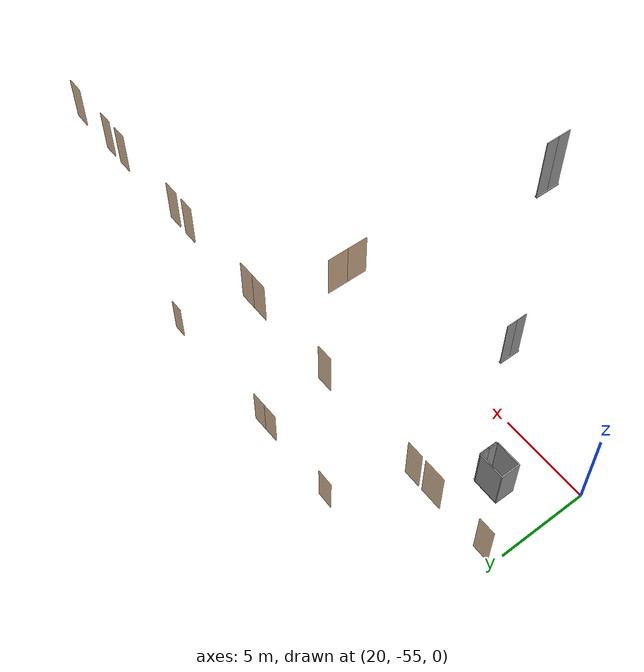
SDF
<sdf version="1.7">
 <world name="sim_world">
  <model name="part6_6">
   <pose>39.43227077368016 -45.329638269879325 0.0 0 0 -3.139936634285074</pose>
   <link name="right">
    <pose>0 0 1.11 0 0 0</pose>
    <visual name="right_visual">
     <geometry><box><size>0.7361016762655125 0.03 2.2</size></box></geometry>
     <material>
      <ambient>0.5 0.25 0 0.6</ambient>
      <diffuse>0.5 0.25 0 0.6</diffuse>
      <pbr><metal><metalness>0.0</metalness></metal></pbr>
     </material>
    </visual>
    <collision name="right_collision">
     <geometry><box><size>0.7361016762655125 0.03 2.2</size></box></geometry>
     <surface><contact><collide_bitmask>0x02</collide_bitmask></contact></surface>
    </collision>
    <inertial>
     <mass>50.0</mass>
     <inertia><ixx>20.17041666666667</ixx><iyy>22.42435699083708</iyy><izz>2.2614403241704055</izz></inertia>
    </inertial>
   </link>
   <joint name="right_joint" type="revolute">
    <parent>world</parent>
    <child>right</child>
    <axis><xyz>0 0 1</xyz><limit><lower>0</lower><upper>1.57</upper></limit></axis>
    <pose>0.37305083813275625 0 0 0 0 0</pose>
   </joint>
   <plugin name="register_component" filename="libregister_component.so">
    <component name="Door">
     <v_max_door>0.5</v_max_door>
     <a_max_door>0.3</a_max_door>
     <a_nom_door>0.15</a_nom_door>
     <dx_min_door>0.01</dx_min_door>
     <f_max_door>500.0</f_max_door>
     <ros_interface>true</ros_interface>
     <door name="part6_6" type="SwingDoor" left_joint_name="empty_joint" right_joint_name="right_joint"/>
    </component>
   </plugin>
  </model>
  <model name="part6_5">
   <pose>31.96186918527571 -45.401950517845776 0.0 0 0 -3.119890546180535</pose>
   <link name="right">
    <pose>0.4203733144691241 0 1.11 0 0 0</pose>
    <visual name="right_visual">
     <geometry><box><size>0.8307466289382482 0.03 2.2</size></box></geometry>
     <material>
      <ambient>0.5 0.25 0 0.6</ambient>
      <diffuse>0.5 0.25 0 0.6</diffuse>
      <pbr><metal><metalness>0.0</metalness></metal></pbr>
     </material>
    </visual>
    <collision name="right_collision">
     <geometry><box><size>0.8307466289382482 0.03 2.2</size></box></geometry>
     <surface><contact><collide_bitmask>0x02</collide_bitmask></contact></surface>
    </collision>
    <inertial>
     <mass>50.0</mass>
     <inertia><ixx>20.17041666666667</ixx><iyy>23.042249839551104</iyy><izz>2.8793331728844316</izz></inertia>
    </inertial>
   </link>
   <joint name="right_joint" type="revolute">
    <parent>world</parent>
    <child>right</child>
    <axis><xyz>0 0 -1</xyz><limit><lower>0</lower><upper>1.57</upper></limit></axis>
    <pose>0.4203733144691241 0 0 0 0 0</pose>
   </joint>
   <link name="left">
    <pose>-0.4203733144691241 0 1.11 0 0 0</pose>
    <visual name="left_visual">
     <geometry><box><size>0.8307466289382482 0.03 2.2</size></box></geometry>
     <material>
      <ambient>0.5 0.25 0 0.6</ambient>
      <diffuse>0.5 0.25 0 0.6</diffuse>
      <pbr><metal><metalness>0.0</metalness></metal></pbr>
     </material>
    </visual>
    <collision name="left_collision">
     <geometry><box><size>0.8307466289382482 0.03 2.2</size></box></geometry>
     <surface><contact><collide_bitmask>0x02</collide_bitmask></contact></surface>
    </collision>
    <inertial>
     <mass>50.0</mass>
     <inertia><ixx>20.17041666666667</ixx><iyy>23.042249839551104</iyy><izz>2.8793331728844316</izz></inertia>
    </inertial>
   </link>
   <joint name="left_joint" type="revolute">
    <parent>world</parent>
    <child>left</child>
    <axis><xyz>0 0 -1</xyz><limit><lower>-1.57</lower><upper>0</upper></limit></axis>
    <pose>-0.4203733144691241 0 0 0 0 0</pose>
   </joint>
   <plugin name="register_component" filename="libregister_component.so">
    <component name="Door">
     <v_max_door>0.5</v_max_door>
     <a_max_door>0.3</a_max_door>
     <a_nom_door>0.15</a_nom_door>
     <dx_min_door>0.01</dx_min_door>
     <f_max_door>500.0</f_max_door>
     <ros_interface>true</ros_interface>
     <door name="part6_5" type="DoubleSwingDoor" left_joint_name="left_joint" right_joint_name="right_joint"/>
    </component>
   </plugin>
  </model>
  <model name="part6_4">
   <pose>27.152362558267583 -45.32425476623065 0.0 0 0 3.1304241835223103</pose>
   <link name="right">
    <pose>0 0 1.11 0 0 0</pose>
    <visual name="right_visual">
     <geometry><box><size>0.9181546595342762 0.03 2.2</size></box></geometry>
     <material>
      <ambient>0.5 0.25 0 0.6</ambient>
      <diffuse>0.5 0.25 0 0.6</diffuse>
      <pbr><metal><metalness>0.0</metalness></metal></pbr>
     </material>
    </visual>
    <collision name="right_collision">
     <geometry><box><size>0.9181546595342762 0.03 2.2</size></box></geometry>
     <surface><contact><collide_bitmask>0x02</collide_bitmask></contact></surface>
    </collision>
    <inertial>
     <mass>50.0</mass>
     <inertia><ixx>20.17041666666667</ixx><iyy>23.679199911768766</iyy><izz>3.5162832451020947</izz></inertia>
    </inertial>
   </link>
   <joint name="right_joint" type="revolute">
    <parent>world</parent>
    <child>right</child>
    <axis><xyz>0 0 -1</xyz><limit><lower>0</lower><upper>1.57</upper></limit></axis>
    <pose>0.4640773297671381 0 0 0 0 0</pose>
   </joint>
   <plugin name="register_component" filename="libregister_component.so">
    <component name="Door">
     <v_max_door>0.5</v_max_door>
     <a_max_door>0.3</a_max_door>
     <a_nom_door>0.15</a_nom_door>
     <dx_min_door>0.01</dx_min_door>
     <f_max_door>500.0</f_max_door>
     <ros_interface>true</ros_interface>
     <door name="part6_4" type="SwingDoor" left_joint_name="empty_joint" right_joint_name="right_joint"/>
    </component>
   </plugin>
  </model>
  <model name="L3_part3_1">
   <pose>17.990032636195586 -45.40765812131555 10.0 0 0 -3.1397299982213327</pose>
   <link name="right">
    <pose>0 0 1.11 0 0 0</pose>
    <visual name="right_visual">
     <geometry><box><size>0.7593822403302257 0.03 2.2</size></box></geometry>
     <material>
      <ambient>0.5 0.25 0 0.6</ambient>
      <diffuse>0.5 0.25 0 0.6</diffuse>
      <pbr><metal><metalness>0.0</metalness></metal></pbr>
     </material>
    </visual>
    <collision name="right_collision">
     <geometry><box><size>0.7593822403302257 0.03 2.2</size></box></geometry>
     <surface><contact><collide_bitmask>0x02</collide_bitmask></contact></surface>
    </collision>
    <inertial>
     <mass>50.0</mass>
     <inertia><ixx>20.17041666666667</ixx><iyy>22.569422445537306</iyy><izz>2.4065057788706365</izz></inertia>
    </inertial>
   </link>
   <joint name="right_joint" type="revolute">
    <parent>world</parent>
    <child>right</child>
    <axis><xyz>0 0 1</xyz><limit><lower>0</lower><upper>1.57</upper></limit></axis>
    <pose>0.38469112016511287 0 0 0 0 0</pose>
   </joint>
   <plugin name="register_component" filename="libregister_component.so">
    <component name="Door">
     <v_max_door>0.5</v_max_door>
     <a_max_door>0.3</a_max_door>
     <a_nom_door>0.15</a_nom_door>
     <dx_min_door>0.01</dx_min_door>
     <f_max_door>500.0</f_max_door>
     <ros_interface>true</ros_interface>
     <door name="L3_part3_1" type="SwingDoor" left_joint_name="empty_joint" right_joint_name="right_joint"/>
    </component>
   </plugin>
  </model>
  <model name="L3_part3_2">
   <pose>20.75311355754777 -45.40251144785178 10.0 0 0 -3.1397299982213336</pose>
   <link name="right">
    <pose>0 0 1.11 0 0 0</pose>
    <visual name="right_visual">
     <geometry><box><size>1.0098543612818958 0.03 2.2</size></box></geometry>
     <material>
      <ambient>0.5 0.25 0 0.6</ambient>
      <diffuse>0.5 0.25 0 0.6</diffuse>
      <pbr><metal><metalness>0.0</metalness></metal></pbr>
     </material>
    </visual>
    <collision name="right_collision">
     <geometry><box><size>1.0098543612818958 0.03 2.2</size></box></geometry>
     <surface><contact><collide_bitmask>0x02</collide_bitmask></contact></surface>
    </collision>
    <inertial>
     <mass>50.0</mass>
     <inertia><ixx>20.17041666666667</ixx><iyy>24.415857629166947</iyy><izz>4.252940962500274</izz></inertia>
    </inertial>
   </link>
   <joint name="right_joint" type="revolute">
    <parent>world</parent>
    <child>right</child>
    <axis><xyz>0 0 1</xyz><limit><lower>0</lower><upper>1.57</upper></limit></axis>
    <pose>0.5099271806409479 0 0 0 0 0</pose>
   </joint>
   <plugin name="register_component" filename="libregister_component.so">
    <component name="Door">
     <v_max_door>0.5</v_max_door>
     <a_max_door>0.3</a_max_door>
     <a_nom_door>0.15</a_nom_door>
     <dx_min_door>0.01</dx_min_door>
     <f_max_door>500.0</f_max_door>
     <ros_interface>true</ros_interface>
     <door name="L3_part3_2" type="SwingDoor" left_joint_name="empty_joint" right_joint_name="right_joint"/>
    </component>
   </plugin>
  </model>
  <model name="L3_part3_3">
   <pose>21.82845508772859 -45.4005084548612 10.0 0 0 -3.139729998221334</pose>
   <link name="right">
    <pose>0 0 1.11 0 0 0</pose>
    <visual name="right_visual">
     <geometry><box><size>0.7801916379813687 0.03 2.2</size></box></geometry>
     <material>
      <ambient>0.5 0.25 0 0.6</ambient>
      <diffuse>0.5 0.25 0 0.6</diffuse>
      <pbr><metal><metalness>0.0</metalness></metal></pbr>
     </material>
    </visual>
    <collision name="right_collision">
     <geometry><box><size>0.7801916379813687 0.03 2.2</size></box></geometry>
     <surface><contact><collide_bitmask>0x02</collide_bitmask></contact></surface>
    </collision>
    <inertial>
     <mass>50.0</mass>
     <inertia><ixx>20.17041666666667</ixx><iyy>22.702912466566882</iyy><izz>2.539995799900213</izz></inertia>
    </inertial>
   </link>
   <joint name="right_joint" type="revolute">
    <parent>world</parent>
    <child>right</child>
    <axis><xyz>0 0 -1</xyz><limit><lower>0</lower><upper>1.57</upper></limit></axis>
    <pose>0.39509581899068436 0 0 0 0 0</pose>
   </joint>
   <plugin name="register_component" filename="libregister_component.so">
    <component name="Door">
     <v_max_door>0.5</v_max_door>
     <a_max_door>0.3</a_max_door>
     <a_nom_door>0.15</a_nom_door>
     <dx_min_door>0.01</dx_min_door>
     <f_max_door>500.0</f_max_door>
     <ros_interface>true</ros_interface>
     <door name="L3_part3_3" type="SwingDoor" left_joint_name="empty_joint" right_joint_name="right_joint"/>
    </component>
   </plugin>
  </model>
  <model name="L3_part3_4">
   <pose>27.206500082289644 -45.37553017928901 10.0 0 0 -3.1397299982213314</pose>
   <link name="right">
    <pose>0 0 1.11 0 0 0</pose>
    <visual name="right_visual">
     <geometry><box><size>0.7894330785531583 0.03 2.2</size></box></geometry>
     <material>
      <ambient>0.5 0.25 0 0.6</ambient>
      <diffuse>0.5 0.25 0 0.6</diffuse>
      <pbr><metal><metalness>0.0</metalness></metal></pbr>
     </material>
    </visual>
    <collision name="right_collision">
     <geometry><box><size>0.7894330785531583 0.03 2.2</size></box></geometry>
     <surface><contact><collide_bitmask>0x02</collide_bitmask></contact></surface>
    </collision>
    <inertial>
     <mass>50.0</mass>
     <inertia><ixx>20.17041666666667</ixx><iyy>22.763352439641324</iyy><izz>2.600435772974654</izz></inertia>
    </inertial>
   </link>
   <joint name="right_joint" type="revolute">
    <parent>world</parent>
    <child>right</child>
    <axis><xyz>0 0 -1</xyz><limit><lower>0</lower><upper>1.57</upper></limit></axis>
    <pose>0.39971653927657913 0 0 0 0 0</pose>
   </joint>
   <plugin name="register_component" filename="libregister_component.so">
    <component name="Door">
     <v_max_door>0.5</v_max_door>
     <a_max_door>0.3</a_max_door>
     <a_nom_door>0.15</a_nom_door>
     <dx_min_door>0.01</dx_min_door>
     <f_max_door>500.0</f_max_door>
     <ros_interface>true</ros_interface>
     <door name="L3_part3_4" type="SwingDoor" left_joint_name="empty_joint" right_joint_name="right_joint"/>
    </component>
   </plugin>
  </model>
  <model name="L3_part3_6">
   <pose>31.994276951127574 -45.36661219068763 10.0 0 0 -3.139729998221333</pose>
   <link name="right">
    <pose>0.41069478904673024 0 1.11 0 0 0</pose>
    <visual name="right_visual">
     <geometry><box><size>0.8113895780934605 0.03 2.2</size></box></geometry>
     <material>
      <ambient>0.5 0.25 0 0.6</ambient>
      <diffuse>0.5 0.25 0 0.6</diffuse>
      <pbr><metal><metalness>0.0</metalness></metal></pbr>
     </material>
    </visual>
    <collision name="right_collision">
     <geometry><box><size>0.8113895780934605 0.03 2.2</size></box></geometry>
     <surface><contact><collide_bitmask>0x02</collide_bitmask></contact></surface>
    </collision>
    <inertial>
     <mass>50.0</mass>
     <inertia><ixx>20.17041666666667</ixx><iyy>22.909804364327854</iyy><izz>2.7468876976611822</izz></inertia>
    </inertial>
   </link>
   <joint name="right_joint" type="revolute">
    <parent>world</parent>
    <child>right</child>
    <axis><xyz>0 0 -1</xyz><limit><lower>0</lower><upper>1.57</upper></limit></axis>
    <pose>0.41069478904673024 0 0 0 0 0</pose>
   </joint>
   <link name="left">
    <pose>-0.41069478904673024 0 1.11 0 0 0</pose>
    <visual name="left_visual">
     <geometry><box><size>0.8113895780934605 0.03 2.2</size></box></geometry>
     <material>
      <ambient>0.5 0.25 0 0.6</ambient>
      <diffuse>0.5 0.25 0 0.6</diffuse>
      <pbr><metal><metalness>0.0</metalness></metal></pbr>
     </material>
    </visual>
    <collision name="left_collision">
     <geometry><box><size>0.8113895780934605 0.03 2.2</size></box></geometry>
     <surface><contact><collide_bitmask>0x02</collide_bitmask></contact></surface>
    </collision>
    <inertial>
     <mass>50.0</mass>
     <inertia><ixx>20.17041666666667</ixx><iyy>22.909804364327854</iyy><izz>2.7468876976611822</izz></inertia>
    </inertial>
   </link>
   <joint name="left_joint" type="revolute">
    <parent>world</parent>
    <child>left</child>
    <axis><xyz>0 0 -1</xyz><limit><lower>-1.57</lower><upper>0</upper></limit></axis>
    <pose>-0.41069478904673024 0 0 0 0 0</pose>
   </joint>
   <plugin name="register_component" filename="libregister_component.so">
    <component name="Door">
     <v_max_door>0.5</v_max_door>
     <a_max_door>0.3</a_max_door>
     <a_nom_door>0.15</a_nom_door>
     <dx_min_door>0.01</dx_min_door>
     <f_max_door>500.0</f_max_door>
     <ros_interface>true</ros_interface>
     <door name="L3_part3_6" type="DoubleSwingDoor" left_joint_name="left_joint" right_joint_name="right_joint"/>
    </component>
   </plugin>
  </model>
  <model name="L3_part3_7">
   <pose>36.804131453941515 -45.35765307901526 10.0 0 0 -3.139729998221331</pose>
   <link name="right">
    <pose>0 0 1.11 0 0 0</pose>
    <visual name="right_visual">
     <geometry><box><size>0.7318679513551491 0.03 2.2</size></box></geometry>
     <material>
      <ambient>0.5 0.25 0 0.6</ambient>
      <diffuse>0.5 0.25 0 0.6</diffuse>
      <pbr><metal><metalness>0.0</metalness></metal></pbr>
     </material>
    </visual>
    <collision name="right_collision">
     <geometry><box><size>0.7318679513551491 0.03 2.2</size></box></geometry>
     <surface><contact><collide_bitmask>0x02</collide_bitmask></contact></surface>
    </collision>
    <inertial>
     <mass>50.0</mass>
     <inertia><ixx>20.17041666666667</ixx><iyy>22.3984612425866</iyy><izz>2.235544575919929</izz></inertia>
    </inertial>
   </link>
   <joint name="right_joint" type="revolute">
    <parent>world</parent>
    <child>right</child>
    <axis><xyz>0 0 1</xyz><limit><lower>0</lower><upper>1.57</upper></limit></axis>
    <pose>0.3709339756775746 0 0 0 0 0</pose>
   </joint>
   <plugin name="register_component" filename="libregister_component.so">
    <component name="Door">
     <v_max_door>0.5</v_max_door>
     <a_max_door>0.3</a_max_door>
     <a_nom_door>0.15</a_nom_door>
     <dx_min_door>0.01</dx_min_door>
     <f_max_door>500.0</f_max_door>
     <ros_interface>true</ros_interface>
     <door name="L3_part3_7" type="SwingDoor" left_joint_name="empty_joint" right_joint_name="right_joint"/>
    </component>
   </plugin>
  </model>
  <model name="L3_part3_8">
   <pose>37.95108594614112 -45.355516695602255 10.0 0 0 -3.1397299982213203</pose>
   <link name="right">
    <pose>0 0 1.11 0 0 0</pose>
    <visual name="right_visual">
     <geometry><box><size>0.7810479253070776 0.03 2.2</size></box></geometry>
     <material>
      <ambient>0.5 0.25 0 0.6</ambient>
      <diffuse>0.5 0.25 0 0.6</diffuse>
      <pbr><metal><metalness>0.0</metalness></metal></pbr>
     </material>
    </visual>
    <collision name="right_collision">
     <geometry><box><size>0.7810479253070776 0.03 2.2</size></box></geometry>
     <surface><contact><collide_bitmask>0x02</collide_bitmask></contact></surface>
    </collision>
    <inertial>
     <mass>50.0</mass>
     <inertia><ixx>20.17041666666667</ixx><iyy>22.708482756777048</iyy><izz>2.5455660901103765</izz></inertia>
    </inertial>
   </link>
   <joint name="right_joint" type="revolute">
    <parent>world</parent>
    <child>right</child>
    <axis><xyz>0 0 -1</xyz><limit><lower>0</lower><upper>1.57</upper></limit></axis>
    <pose>0.3955239626535388 0 0 0 0 0</pose>
   </joint>
   <plugin name="register_component" filename="libregister_component.so">
    <component name="Door">
     <v_max_door>0.5</v_max_door>
     <a_max_door>0.3</a_max_door>
     <a_nom_door>0.15</a_nom_door>
     <dx_min_door>0.01</dx_min_door>
     <f_max_door>500.0</f_max_door>
     <ros_interface>true</ros_interface>
     <door name="L3_part3_8" type="SwingDoor" left_joint_name="empty_joint" right_joint_name="right_joint"/>
    </component>
   </plugin>
  </model>
  <model name="L3_part3_9">
   <pose>42.17848027970073 -45.34764250774576 10.0 0 0 -3.139729998221331</pose>
   <link name="right">
    <pose>0 0 1.11 0 0 0</pose>
    <visual name="right_visual">
     <geometry><box><size>0.7546968945857847 0.03 2.2</size></box></geometry>
     <material>
      <ambient>0.5 0.25 0 0.6</ambient>
      <diffuse>0.5 0.25 0 0.6</diffuse>
      <pbr><metal><metalness>0.0</metalness></metal></pbr>
     </material>
    </visual>
    <collision name="right_collision">
     <geometry><box><size>0.7546968945857847 0.03 2.2</size></box></geometry>
     <surface><contact><collide_bitmask>0x02</collide_bitmask></contact></surface>
    </collision>
    <inertial>
     <mass>50.0</mass>
     <inertia><ixx>20.17041666666667</ixx><iyy>22.539864177905947</iyy><izz>2.3769475112392793</izz></inertia>
    </inertial>
   </link>
   <joint name="right_joint" type="revolute">
    <parent>world</parent>
    <child>right</child>
    <axis><xyz>0 0 1</xyz><limit><lower>0</lower><upper>1.57</upper></limit></axis>
    <pose>0.38234844729289236 0 0 0 0 0</pose>
   </joint>
   <plugin name="register_component" filename="libregister_component.so">
    <component name="Door">
     <v_max_door>0.5</v_max_door>
     <a_max_door>0.3</a_max_door>
     <a_nom_door>0.15</a_nom_door>
     <dx_min_door>0.01</dx_min_door>
     <f_max_door>500.0</f_max_door>
     <ros_interface>true</ros_interface>
     <door name="L3_part3_9" type="SwingDoor" left_joint_name="empty_joint" right_joint_name="right_joint"/>
    </component>
   </plugin>
  </model>
  <model name="L3_part3_10">
   <pose>43.35486353903336 -45.34545130861829 10.0 0 0 -3.139729998221331</pose>
   <link name="right">
    <pose>0 0 1.11 0 0 0</pose>
    <visual name="right_visual">
     <geometry><box><size>0.7226588235126301 0.03 2.2</size></box></geometry>
     <material>
      <ambient>0.5 0.25 0 0.6</ambient>
      <diffuse>0.5 0.25 0 0.6</diffuse>
      <pbr><metal><metalness>0.0</metalness></metal></pbr>
     </material>
    </visual>
    <collision name="right_collision">
     <geometry><box><size>0.7226588235126301 0.03 2.2</size></box></geometry>
     <surface><contact><collide_bitmask>0x02</collide_bitmask></contact></surface>
    </collision>
    <inertial>
     <mass>50.0</mass>
     <inertia><ixx>20.17041666666667</ixx><iyy>22.342649063336083</iyy><izz>2.1797323966694115</izz></inertia>
    </inertial>
   </link>
   <joint name="right_joint" type="revolute">
    <parent>world</parent>
    <child>right</child>
    <axis><xyz>0 0 -1</xyz><limit><lower>0</lower><upper>1.57</upper></limit></axis>
    <pose>0.36632941175631506 0 0 0 0 0</pose>
   </joint>
   <plugin name="register_component" filename="libregister_component.so">
    <component name="Door">
     <v_max_door>0.5</v_max_door>
     <a_max_door>0.3</a_max_door>
     <a_nom_door>0.15</a_nom_door>
     <dx_min_door>0.01</dx_min_door>
     <f_max_door>500.0</f_max_door>
     <ros_interface>true</ros_interface>
     <door name="L3_part3_10" type="SwingDoor" left_joint_name="empty_joint" right_joint_name="right_joint"/>
    </component>
   </plugin>
  </model>
  <model name="L3_part3_11_end">
   <pose>45.966837046791085 -45.35076462389296 10.0 0 0 3.1203617634492713</pose>
   <link name="right">
    <pose>0 0 1.11 0 0 0</pose>
    <visual name="right_visual">
     <geometry><box><size>0.8715809155822007 0.03 2.2</size></box></geometry>
     <material>
      <ambient>0.5 0.25 0 0.6</ambient>
      <diffuse>0.5 0.25 0 0.6</diffuse>
      <pbr><metal><metalness>0.0</metalness></metal></pbr>
     </material>
    </visual>
    <collision name="right_collision">
     <geometry><box><size>0.8715809155822007 0.03 2.2</size></box></geometry>
     <surface><contact><collide_bitmask>0x02</collide_bitmask></contact></surface>
    </collision>
    <inertial>
     <mass>50.0</mass>
     <inertia><ixx>20.17041666666667</ixx><iyy>23.331888718362954</iyy><izz>3.1689720516962807</izz></inertia>
    </inertial>
   </link>
   <joint name="right_joint" type="revolute">
    <parent>world</parent>
    <child>right</child>
    <axis><xyz>0 0 -1</xyz><limit><lower>0</lower><upper>1.57</upper></limit></axis>
    <pose>0.4407904577911004 0 0 0 0 0</pose>
   </joint>
   <plugin name="register_component" filename="libregister_component.so">
    <component name="Door">
     <v_max_door>0.5</v_max_door>
     <a_max_door>0.3</a_max_door>
     <a_nom_door>0.15</a_nom_door>
     <dx_min_door>0.01</dx_min_door>
     <f_max_door>500.0</f_max_door>
     <ros_interface>true</ros_interface>
     <door name="L3_part3_11_end" type="SwingDoor" left_joint_name="empty_joint" right_joint_name="right_joint"/>
    </component>
   </plugin>
  </model>
  <model name="L3_part3_5">
   <pose>30.705465016354843 -49.27399675622574 10.0 0 0 -1.5713414231312293</pose>
   <link name="right">
    <pose>0.5015838722138937 0 1.11 0 0 0</pose>
    <visual name="right_visual">
     <geometry><box><size>0.9931677444277873 0.03 2.2</size></box></geometry>
     <material>
      <ambient>0.5 0.25 0 0.6</ambient>
      <diffuse>0.5 0.25 0 0.6</diffuse>
      <pbr><metal><metalness>0.0</metalness></metal></pbr>
     </material>
    </visual>
    <collision name="right_collision">
     <geometry><box><size>0.9931677444277873 0.03 2.2</size></box></geometry>
     <surface><contact><collide_bitmask>0x02</collide_bitmask></contact></surface>
    </collision>
    <inertial>
     <mass>50.0</mass>
     <inertia><ixx>20.17041666666667</ixx><iyy>24.276592369049084</iyy><izz>4.1136757023824115</izz></inertia>
    </inertial>
   </link>
   <joint name="right_joint" type="revolute">
    <parent>world</parent>
    <child>right</child>
    <axis><xyz>0 0 -1</xyz><limit><lower>0</lower><upper>1.57</upper></limit></axis>
    <pose>0.5015838722138937 0 0 0 0 0</pose>
   </joint>
   <link name="left">
    <pose>-0.5015838722138937 0 1.11 0 0 0</pose>
    <visual name="left_visual">
     <geometry><box><size>0.9931677444277873 0.03 2.2</size></box></geometry>
     <material>
      <ambient>0.5 0.25 0 0.6</ambient>
      <diffuse>0.5 0.25 0 0.6</diffuse>
      <pbr><metal><metalness>0.0</metalness></metal></pbr>
     </material>
    </visual>
    <collision name="left_collision">
     <geometry><box><size>0.9931677444277873 0.03 2.2</size></box></geometry>
     <surface><contact><collide_bitmask>0x02</collide_bitmask></contact></surface>
    </collision>
    <inertial>
     <mass>50.0</mass>
     <inertia><ixx>20.17041666666667</ixx><iyy>24.276592369049084</iyy><izz>4.1136757023824115</izz></inertia>
    </inertial>
   </link>
   <joint name="left_joint" type="revolute">
    <parent>world</parent>
    <child>left</child>
    <axis><xyz>0 0 -1</xyz><limit><lower>-1.57</lower><upper>0</upper></limit></axis>
    <pose>-0.5015838722138937 0 0 0 0 0</pose>
   </joint>
   <plugin name="register_component" filename="libregister_component.so">
    <component name="Door">
     <v_max_door>0.5</v_max_door>
     <a_max_door>0.3</a_max_door>
     <a_nom_door>0.15</a_nom_door>
     <dx_min_door>0.01</dx_min_door>
     <f_max_door>500.0</f_max_door>
     <ros_interface>true</ros_interface>
     <door name="L3_part3_5" type="DoubleSwingDoor" left_joint_name="left_joint" right_joint_name="right_joint"/>
    </component>
   </plugin>
  </model>
  <model name="ShaftDoor_lift2_L2_entrada_lift2_doors">
   <pose>23.69537281717664 -52.122730993248496 0.0 0 0 4.71</pose>
   <link name="right_door">
    <pose>0.25 0 1.25 0 0 0</pose>
    <visual name="right_door_visual">
     <geometry><box><size>0.5 0.03 2.5</size></box></geometry>
     <material>
      <ambient>0.5 0.5 0.5 1</ambient>
      <diffuse>0.7 0.7 0.7 1</diffuse>
      <specular>0.6 0.6 0.6 1</specular>
      <emissive>0.1 0.1 0.1 1</emissive>
     </material>
    </visual>
    <collision name="right_door_collision">
     <geometry><box><size>0.5 0.03 2.5</size></box></geometry>
     <surface><contact><collide_bitmask>0x02</collide_bitmask></contact></surface>
    </collision>
   </link>
   <link name="left_door">
    <pose>-0.25 0 1.25 0 0 0</pose>
    <visual name="left_door_visual">
     <geometry><box><size>0.5 0.03 2.5</size></box></geometry>
     <material>
      <ambient>0.5 0.5 0.5 1</ambient>
      <diffuse>0.7 0.7 0.7 1</diffuse>
      <specular>0.6 0.6 0.6 1</specular>
      <emissive>0.1 0.1 0.1 1</emissive>
     </material>
    </visual>
    <collision name="left_door_collision">
     <geometry><box><size>0.5 0.03 2.5</size></box></geometry>
     <surface><contact><collide_bitmask>0x02</collide_bitmask></contact></surface>
    </collision>
   </link>
   <joint name="right_joint" type="prismatic">
    <parent>world</parent>
    <child>right_door</child>
    <axis><xyz>1 0 0</xyz><limit><lower>0</lower><upper>0.5</upper></limit></axis>
   </joint>
   <joint name="left_joint" type="prismatic">
    <parent>world</parent>
    <child>left_door</child>
    <axis><xyz>1 0 0</xyz><limit><lower>-0.5</lower><upper>0</upper></limit></axis>
   </joint>
   <link name="ramp">
    <pose>0 0 -0.025 0 0 0</pose>
    <visual name="ramp_visual">
     <geometry><box><size>1.0 0.1 0.05</size></box></geometry>
     <material>
      <ambient>0.5 0.5 0.5 1</ambient>
      <diffuse>0.7 0.7 0.7 1</diffuse>
      <specular>0.6 0.6 0.6 1</specular>
      <emissive>0.1 0.1 0.1 1</emissive>
     </material>
    </visual>
    <collision name="ramp_collision">
     <geometry><box><size>1.0 0.1 0.05</size></box></geometry>
     <surface><contact><collide_bitmask>0x02</collide_bitmask></contact></surface>
    </collision>
   </link>
   <joint name="ramp_joint" type="fixed"><parent>world</parent><child>ramp</child></joint>
   <plugin name="register_component" filename="libregister_component.so">
    <component name="Door">
     <v_max_door>0.3</v_max_door>
     <a_max_door>0.2</a_max_door>
     <a_nom_door>0.1</a_nom_door>
     <dx_min_door>0.0001</dx_min_door>
     <f_max_door>35.0</f_max_door>
     <door left_joint_name="left_joint" name="ShaftDoor_lift2_L2_entrada_lift2_doors" right_joint_name="right_joint" type="DoubleSlidingDoor"/>
    </component>
   </plugin>
  </model>
  <model name="ShaftDoor_lift2_L3_lift2_doors">
   <pose>23.69537281717664 -52.122730993248496 10.0 0 0 4.71</pose>
   <link name="right_door">
    <pose>0.25 0 1.25 0 0 0</pose>
    <visual name="right_door_visual">
     <geometry><box><size>0.5 0.03 2.5</size></box></geometry>
     <material>
      <ambient>0.5 0.5 0.5 1</ambient>
      <diffuse>0.7 0.7 0.7 1</diffuse>
      <specular>0.6 0.6 0.6 1</specular>
      <emissive>0.1 0.1 0.1 1</emissive>
     </material>
    </visual>
    <collision name="right_door_collision">
     <geometry><box><size>0.5 0.03 2.5</size></box></geometry>
     <surface><contact><collide_bitmask>0x02</collide_bitmask></contact></surface>
    </collision>
   </link>
   <link name="left_door">
    <pose>-0.25 0 1.25 0 0 0</pose>
    <visual name="left_door_visual">
     <geometry><box><size>0.5 0.03 2.5</size></box></geometry>
     <material>
      <ambient>0.5 0.5 0.5 1</ambient>
      <diffuse>0.7 0.7 0.7 1</diffuse>
      <specular>0.6 0.6 0.6 1</specular>
      <emissive>0.1 0.1 0.1 1</emissive>
     </material>
    </visual>
    <collision name="left_door_collision">
     <geometry><box><size>0.5 0.03 2.5</size></box></geometry>
     <surface><contact><collide_bitmask>0x02</collide_bitmask></contact></surface>
    </collision>
   </link>
   <joint name="right_joint" type="prismatic">
    <parent>world</parent>
    <child>right_door</child>
    <axis><xyz>1 0 0</xyz><limit><lower>0</lower><upper>0.5</upper></limit></axis>
   </joint>
   <joint name="left_joint" type="prismatic">
    <parent>world</parent>
    <child>left_door</child>
    <axis><xyz>1 0 0</xyz><limit><lower>-0.5</lower><upper>0</upper></limit></axis>
   </joint>
   <link name="ramp">
    <pose>0 0 -0.025 0 0 0</pose>
    <visual name="ramp_visual">
     <geometry><box><size>1.0 0.1 0.05</size></box></geometry>
     <material>
      <ambient>0.5 0.5 0.5 1</ambient>
      <diffuse>0.7 0.7 0.7 1</diffuse>
      <specular>0.6 0.6 0.6 1</specular>
      <emissive>0.1 0.1 0.1 1</emissive>
     </material>
    </visual>
    <collision name="ramp_collision">
     <geometry><box><size>1.0 0.1 0.05</size></box></geometry>
     <surface><contact><collide_bitmask>0x02</collide_bitmask></contact></surface>
    </collision>
   </link>
   <joint name="ramp_joint" type="fixed"><parent>world</parent><child>ramp</child></joint>
   <plugin name="register_component" filename="libregister_component.so">
    <component name="Door">
     <v_max_door>0.3</v_max_door>
     <a_max_door>0.2</a_max_door>
     <a_nom_door>0.1</a_nom_door>
     <dx_min_door>0.0001</dx_min_door>
     <f_max_door>35.0</f_max_door>
     <door left_joint_name="left_joint" name="ShaftDoor_lift2_L3_lift2_doors" right_joint_name="right_joint" type="DoubleSlidingDoor"/>
    </component>
   </plugin>
  </model>
  <model name="ShaftDoor_lift2_L4_lift2_doors">
   <pose>23.69537281717664 -52.122730993248496 20.0 0 0 4.71</pose>
   <link name="right_door">
    <pose>0.25 0 1.25 0 0 0</pose>
    <visual name="right_door_visual">
     <geometry><box><size>0.5 0.03 2.5</size></box></geometry>
     <material>
      <ambient>0.5 0.5 0.5 1</ambient>
      <diffuse>0.7 0.7 0.7 1</diffuse>
      <specular>0.6 0.6 0.6 1</specular>
      <emissive>0.1 0.1 0.1 1</emissive>
     </material>
    </visual>
    <collision name="right_door_collision">
     <geometry><box><size>0.5 0.03 2.5</size></box></geometry>
     <surface><contact><collide_bitmask>0x02</collide_bitmask></contact></surface>
    </collision>
   </link>
   <link name="left_door">
    <pose>-0.25 0 1.25 0 0 0</pose>
    <visual name="left_door_visual">
     <geometry><box><size>0.5 0.03 2.5</size></box></geometry>
     <material>
      <ambient>0.5 0.5 0.5 1</ambient>
      <diffuse>0.7 0.7 0.7 1</diffuse>
      <specular>0.6 0.6 0.6 1</specular>
      <emissive>0.1 0.1 0.1 1</emissive>
     </material>
    </visual>
    <collision name="left_door_collision">
     <geometry><box><size>0.5 0.03 2.5</size></box></geometry>
     <surface><contact><collide_bitmask>0x02</collide_bitmask></contact></surface>
    </collision>
   </link>
   <joint name="right_joint" type="prismatic">
    <parent>world</parent>
    <child>right_door</child>
    <axis><xyz>1 0 0</xyz><limit><lower>0</lower><upper>0.5</upper></limit></axis>
   </joint>
   <joint name="left_joint" type="prismatic">
    <parent>world</parent>
    <child>left_door</child>
    <axis><xyz>1 0 0</xyz><limit><lower>-0.5</lower><upper>0</upper></limit></axis>
   </joint>
   <link name="ramp">
    <pose>0 0 -0.025 0 0 0</pose>
    <visual name="ramp_visual">
     <geometry><box><size>1.0 0.1 0.05</size></box></geometry>
     <material>
      <ambient>0.5 0.5 0.5 1</ambient>
      <diffuse>0.7 0.7 0.7 1</diffuse>
      <specular>0.6 0.6 0.6 1</specular>
      <emissive>0.1 0.1 0.1 1</emissive>
     </material>
    </visual>
    <collision name="ramp_collision">
     <geometry><box><size>1.0 0.1 0.05</size></box></geometry>
     <surface><contact><collide_bitmask>0x02</collide_bitmask></contact></surface>
    </collision>
   </link>
   <joint name="ramp_joint" type="fixed"><parent>world</parent><child>ramp</child></joint>
   <plugin name="register_component" filename="libregister_component.so">
    <component name="Door">
     <v_max_door>0.3</v_max_door>
     <a_max_door>0.2</a_max_door>
     <a_nom_door>0.1</a_nom_door>
     <dx_min_door>0.0001</dx_min_door>
     <f_max_door>35.0</f_max_door>
     <door left_joint_name="left_joint" name="ShaftDoor_lift2_L4_lift2_doors" right_joint_name="right_joint" type="DoubleSlidingDoor"/>
    </component>
   </plugin>
  </model>
  <model name="lift2">
   <link name="platform">
    <inertial>
     <mass>1200</mass>
     <inertia><ixx>121.25000000000001</ixx><iyy>225.25</iyy><izz>346.0</izz></inertia>
    </inertial>
    <visual name="floor_visual">
     <pose>0 0 -0.025 0 0 0</pose>
     <geometry><box><size>1.1 1.5 0.05</size></box></geometry>
     <material>
      <ambient>0.5 0.5 0.5 1</ambient>
      <diffuse>0.7 0.7 0.7 1</diffuse>
      <specular>0.6 0.6 0.6 1</specular>
      <emissive>0.1 0.1 0.1 1</emissive>
     </material>
    </visual>
    <collision name="floor_collision">
     <pose>0 0 -0.025 0 0 0</pose>
     <geometry><box><size>1.1 1.5 0.05</size></box></geometry>
     <surface><contact><collide_bitmask>0x01</collide_bitmask></contact></surface>
    </collision>
    <visual name="frontwall1_visual">
     <pose>-0.525 0.725 1.25 0 0 0</pose>
     <geometry><box><size>0.050000000000000044 0.05 2.5</size></box></geometry>
     <material>
      <ambient>0.5 0.5 0.5 1</ambient>
      <diffuse>0.7 0.7 0.7 1</diffuse>
      <specular>0.6 0.6 0.6 1</specular>
      <emissive>0.1 0.1 0.1 1</emissive>
     </material>
    </visual>
    <collision name="frontwall1_collision">
     <pose>-0.525 0.725 1.25 0 0 0</pose>
     <geometry><box><size>0.050000000000000044 0.05 2.5</size></box></geometry>
     <surface><contact><collide_bitmask>0x01</collide_bitmask></contact></surface>
    </collision>
    <visual name="frontwall2_visual">
     <pose>0.525 0.725 1.25 0 0 0</pose>
     <geometry><box><size>0.050000000000000044 0.05 2.5</size></box></geometry>
     <material>
      <ambient>0.5 0.5 0.5 1</ambient>
      <diffuse>0.7 0.7 0.7 1</diffuse>
      <specular>0.6 0.6 0.6 1</specular>
      <emissive>0.1 0.1 0.1 1</emissive>
     </material>
    </visual>
    <collision name="frontwall2_collision">
     <pose>0.525 0.725 1.25 0 0 0</pose>
     <geometry><box><size>0.050000000000000044 0.05 2.5</size></box></geometry>
     <surface><contact><collide_bitmask>0x01</collide_bitmask></contact></surface>
    </collision>
    <visual name="backwall1_visual">
     <pose>0.0 -0.725 1.25 0 0 0</pose>
     <geometry><box><size>1.1 0.05 2.5</size></box></geometry>
     <material>
      <ambient>0.5 0.5 0.5 1</ambient>
      <diffuse>0.7 0.7 0.7 1</diffuse>
      <specular>0.6 0.6 0.6 1</specular>
      <emissive>0.1 0.1 0.1 1</emissive>
     </material>
    </visual>
    <collision name="backwall1_collision">
     <pose>0.0 -0.725 1.25 0 0 0</pose>
     <geometry><box><size>1.1 0.05 2.5</size></box></geometry>
     <surface><contact><collide_bitmask>0x01</collide_bitmask></contact></surface>
    </collision>
    <visual name="leftwall1_visual">
     <pose>-0.525 0.0 1.25 0 0 1.5707963267948966</pose>
     <geometry><box><size>1.4 0.05 2.5</size></box></geometry>
     <material>
      <ambient>0.5 0.5 0.5 1</ambient>
      <diffuse>0.7 0.7 0.7 1</diffuse>
      <specular>0.6 0.6 0.6 1</specular>
      <emissive>0.1 0.1 0.1 1</emissive>
     </material>
    </visual>
    <collision name="leftwall1_collision">
     <pose>-0.525 0.0 1.25 0 0 1.5707963267948966</pose>
     <geometry><box><size>1.4 0.05 2.5</size></box></geometry>
     <surface><contact><collide_bitmask>0x01</collide_bitmask></contact></surface>
    </collision>
    <visual name="rightwall1_visual">
     <pose>0.525 0.0 1.25 0 0 1.5707963267948966</pose>
     <geometry><box><size>1.4 0.05 2.5</size></box></geometry>
     <material>
      <ambient>0.5 0.5 0.5 1</ambient>
      <diffuse>0.7 0.7 0.7 1</diffuse>
      <specular>0.6 0.6 0.6 1</specular>
      <emissive>0.1 0.1 0.1 1</emissive>
     </material>
    </visual>
    <collision name="rightwall1_collision">
     <pose>0.525 0.0 1.25 0 0 1.5707963267948966</pose>
     <geometry><box><size>1.4 0.05 2.5</size></box></geometry>
     <surface><contact><collide_bitmask>0x01</collide_bitmask></contact></surface>
    </collision>
   </link>
   <joint name="cabin_joint" type="prismatic">
    <parent>world</parent>
    <child>platform</child>
    <axis><xyz>0 0 1</xyz></axis>
   </joint>
   <model name="CabinDoor_lift2_lift2_doors">
    <pose>0.0 0.725 0 0 0 0.0</pose>
    <link name="right_door">
     <pose>0.25 0 1.25 0 0 0</pose>
     <visual name="right_door_visual">
      <geometry><box><size>0.5 0.03 2.5</size></box></geometry>
      <material>
       <ambient>0.5 0.5 0.5 1</ambient>
       <diffuse>0.7 0.7 0.7 1</diffuse>
       <specular>0.6 0.6 0.6 1</specular>
       <emissive>0.1 0.1 0.1 1</emissive>
      </material>
     </visual>
     <collision name="right_door_collision">
      <geometry><box><size>0.5 0.03 2.5</size></box></geometry>
      <surface><contact><collide_bitmask>0x02</collide_bitmask></contact></surface>
     </collision>
    </link>
    <link name="left_door">
     <pose>-0.25 0 1.25 0 0 0</pose>
     <visual name="left_door_visual">
      <geometry><box><size>0.5 0.03 2.5</size></box></geometry>
      <material>
       <ambient>0.5 0.5 0.5 1</ambient>
       <diffuse>0.7 0.7 0.7 1</diffuse>
       <specular>0.6 0.6 0.6 1</specular>
       <emissive>0.1 0.1 0.1 1</emissive>
      </material>
     </visual>
     <collision name="left_door_collision">
      <geometry><box><size>0.5 0.03 2.5</size></box></geometry>
      <surface><contact><collide_bitmask>0x02</collide_bitmask></contact></surface>
     </collision>
    </link>
    <plugin name="register_component" filename="libregister_component.so">
     <component name="Door">
      <v_max_door>0.3</v_max_door>
      <a_max_door>0.2</a_max_door>
      <a_nom_door>0.1</a_nom_door>
      <dx_min_door>0.0001</dx_min_door>
      <f_max_door>35.0</f_max_door>
      <door left_joint_name="CabinDoor_lift2_lift2_doors_left_joint" name="CabinDoor_lift2_lift2_doors" right_joint_name="CabinDoor_lift2_lift2_doors_right_joint" type="DoubleSlidingDoor"/>
     </component>
    </plugin>
   </model>
   <joint name="CabinDoor_lift2_lift2_doors_right_joint" type="prismatic">
    <parent>platform</parent>
    <child>CabinDoor_lift2_lift2_doors::right_door</child>
    <axis><xyz>1 0 0</xyz><limit><lower>0</lower><upper>0.5</upper></limit></axis>
   </joint>
   <joint name="CabinDoor_lift2_lift2_doors_left_joint" type="prismatic">
    <parent>platform</parent>
    <child>CabinDoor_lift2_lift2_doors::left_door</child>
    <axis><xyz>1 0 0</xyz><limit><lower>-0.5</lower><upper>0</upper></limit></axis>
   </joint>
   <plugin name="register_component" filename="libregister_component.so">
    <component name="Lift">
     <lift_name>lift2</lift_name>
     <floor name="L2_entrada" elevation="0.0">
      <door_pair cabin_door="CabinDoor_lift2_lift2_doors" shaft_door="ShaftDoor_lift2_L2_entrada_lift2_doors"/>
     </floor>
     <floor name="L3" elevation="10.0">
      <door_pair cabin_door="CabinDoor_lift2_lift2_doors" shaft_door="ShaftDoor_lift2_L3_lift2_doors"/>
     </floor>
     <floor name="L4" elevation="20.0">
      <door_pair cabin_door="CabinDoor_lift2_lift2_doors" shaft_door="ShaftDoor_lift2_L4_lift2_doors"/>
     </floor>
     <initial_floor>L2_entrada</initial_floor>
     <v_max_cabin>2.0</v_max_cabin>
     <a_max_cabin>1.2</a_max_cabin>
     <a_nom_cabin>1.0</a_nom_cabin>
     <dx_min_cabin>0.001</dx_min_cabin>
     <f_max_cabin>25323.0</f_max_cabin>
     <cabin_joint_name>cabin_joint</cabin_joint_name>
    </component>
   </plugin>
   <pose>22.895375100066467 -52.12081981075867 0 0 0 4.71</pose>
  </model>
 </world>
</sdf>
